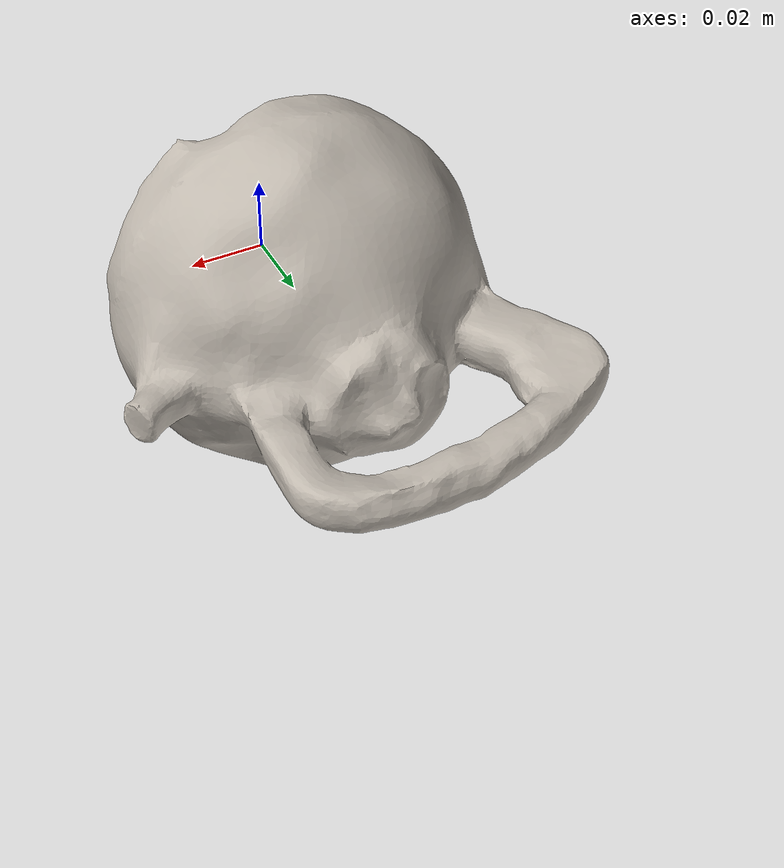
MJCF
<mujoco model="kettle">
  <asset>
    <mesh name="my_object" file="meshes/kettle/textured.obj" scale = "1.0 1.0 1.0"/>
    <texture file="meshes/kettle/texture_map.png" name="tex-kettle" type="2d"/>
    <material name="coke" reflectance="0.7" texrepeat="5 5" texture="tex-kettle" texuniform="true"/>
  </asset>
  <worldbody>
    <body>
        <body name="object">
            <geom pos="0 0 0" mesh="my_object" type="mesh" solimp="0.998 0.998 0.001" solref="0.001 1" density="50" friction="0.95 0.3 0.1" contype="0" conaffinity="0" material="coke" group="1"/>
            <geom pos="0 0 0" mesh="my_object" type="mesh" solimp="0.998 0.998 0.001" solref="0.001 1" density="50" friction="0.95 0.3 0.1" material="coke" group="0"/>
        </body>
    </body>
  </worldbody>
</mujoco>
